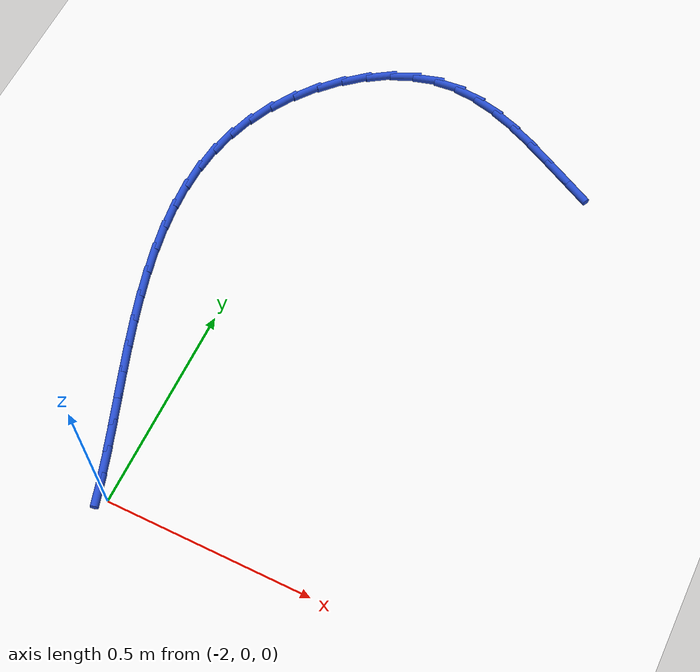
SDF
<sdf version="1.6">
 <world name="default">
  <model name="ground_plane">
   <static>1</static>
   <link name="link">
    <collision name="collision">
     <geometry><plane><normal>0 0 1</normal><size>100 100</size></plane></geometry>
     <surface><friction><ode><mu>100</mu><mu2>50</mu2></ode></friction></surface>
    </collision>
    <visual name="visual">
     <cast_shadows>0</cast_shadows>
     <geometry><plane><normal>0 0 1</normal><size>100 100</size></plane></geometry>
     <material>
      <script><uri>file://media/materials/scripts/gazebo.material</uri><name>Gazebo/WhiteGlow</name></script>
     </material>
    </visual>
   </link>
  </model>
  <model name="line">
   <link name="link_33">
    <pose>-1.3680619945532875 1.1858570843148974 0.01 0 1.57 -0.48167110375959066</pose>
    <collision name="collision">
     <geometry><cylinder><radius>0.01</radius><length>0.08</length></cylinder></geometry>
    </collision>
    <visual name="visual">
     <material>
      <script><name>Gazebo/Blue</name><uri>file://media/materials/scripts/gazebo.material</uri></script>
     </material>
     <geometry><cylinder><radius>0.01</radius><length>0.08</length></cylinder></geometry>
    </visual>
   </link>
   <link name="link_34">
    <pose>-1.4265219002825946 1.216416224162806 0.01 0 1.57 -0.48101776811226676</pose>
    <collision name="collision">
     <geometry><cylinder><radius>0.01</radius><length>0.08</length></cylinder></geometry>
    </collision>
    <visual name="visual">
     <material>
      <script><name>Gazebo/Blue</name><uri>file://media/materials/scripts/gazebo.material</uri></script>
     </material>
     <geometry><cylinder><radius>0.01</radius><length>0.08</length></cylinder></geometry>
    </visual>
   </link>
   <link name="link_35">
    <pose>-1.4845384417464604 1.2466953559377374 0.01 0 1.57 -0.45736196454035827</pose>
    <collision name="collision">
     <geometry><cylinder><radius>0.01</radius><length>0.08</length></cylinder></geometry>
    </collision>
    <visual name="visual">
     <material>
      <script><name>Gazebo/Blue</name><uri>file://media/materials/scripts/gazebo.material</uri></script>
     </material>
     <geometry><cylinder><radius>0.01</radius><length>0.08</length></cylinder></geometry>
    </visual>
   </link>
   <link name="link_36">
    <pose>-1.5421861475668266 1.2750676807455048 0.01 0 1.57 -0.40869612605816397</pose>
    <collision name="collision">
     <geometry><cylinder><radius>0.01</radius><length>0.08</length></cylinder></geometry>
    </collision>
    <visual name="visual">
     <material>
      <script><name>Gazebo/Blue</name><uri>file://media/materials/scripts/gazebo.material</uri></script>
     </material>
     <geometry><cylinder><radius>0.01</radius><length>0.08</length></cylinder></geometry>
    </visual>
   </link>
   <link name="link_37">
    <pose>-1.5995395463656366 1.2999063996919218 0.01 0 1.57 -0.3317006676024272</pose>
    <collision name="collision">
     <geometry><cylinder><radius>0.01</radius><length>0.08</length></cylinder></geometry>
    </collision>
    <visual name="visual">
     <material>
      <script><name>Gazebo/Blue</name><uri>file://media/materials/scripts/gazebo.material</uri></script>
     </material>
     <geometry><cylinder><radius>0.01</radius><length>0.08</length></cylinder></geometry>
    </visual>
   </link>
   <link name="link_38">
    <pose>-1.6566731667648333 1.3195847138828012 0.01 0 1.57 -0.22246201986221373</pose>
    <collision name="collision">
     <geometry><cylinder><radius>0.01</radius><length>0.08</length></cylinder></geometry>
    </collision>
    <visual name="visual">
     <material>
      <script><name>Gazebo/Blue</name><uri>file://media/materials/scripts/gazebo.material</uri></script>
     </material>
     <geometry><cylinder><radius>0.01</radius><length>0.08</length></cylinder></geometry>
    </visual>
   </link>
   <link name="link_39">
    <pose>-1.7136615373863584 1.3324758244239563 0.01 0 1.57 -0.07849776703074753</pose>
    <collision name="collision">
     <geometry><cylinder><radius>0.01</radius><length>0.08</length></cylinder></geometry>
    </collision>
    <visual name="visual">
     <material>
      <script><name>Gazebo/Blue</name><uri>file://media/materials/scripts/gazebo.material</uri></script>
     </material>
     <geometry><cylinder><radius>0.01</radius><length>0.08</length></cylinder></geometry>
    </visual>
   </link>
   <link name="link_40">
    <pose>-1.7705791868521557 1.3369529324212006 0.01 0 1.57 0.0974018023067394</pose>
    <collision name="collision">
     <geometry><cylinder><radius>0.01</radius><length>0.08</length></cylinder></geometry>
    </collision>
    <visual name="visual">
     <material>
      <script><name>Gazebo/Blue</name><uri>file://media/materials/scripts/gazebo.material</uri></script>
     </material>
     <geometry><cylinder><radius>0.01</radius><length>0.08</length></cylinder></geometry>
    </visual>
   </link>
   <link name="link_41">
    <pose>-1.8274999192442494 1.33139115095042 0.01 0 1.57 0.28256150475679875</pose>
    <collision name="collision">
     <geometry><cylinder><radius>0.01</radius><length>0.08</length></cylinder></geometry>
    </collision>
    <visual name="visual">
     <material>
      <script><name>Gazebo/Blue</name><uri>file://media/materials/scripts/gazebo.material</uri></script>
     </material>
     <geometry><cylinder><radius>0.01</radius><length>0.08</length></cylinder></geometry>
    </visual>
   </link>
   <link name="link_42">
    <pose>-1.8842090804911673 1.3149267980165213 0.01 0 1.57 0.44230348806482017</pose>
    <collision name="collision">
     <geometry><cylinder><radius>0.01</radius><length>0.08</length></cylinder></geometry>
    </collision>
    <visual name="visual">
     <material>
      <script><name>Gazebo/Blue</name><uri>file://media/materials/scripts/gazebo.material</uri></script>
     </material>
     <geometry><cylinder><radius>0.01</radius><length>0.08</length></cylinder></geometry>
    </visual>
   </link>
   <link name="link_43">
    <pose>-1.9397645611070429 1.2886158553273495 0.01 0 1.57 0.5780629868582995</pose>
    <collision name="collision">
     <geometry><cylinder><radius>0.01</radius><length>0.08</length></cylinder></geometry>
    </collision>
    <visual name="visual">
     <material>
      <script><name>Gazebo/Blue</name><uri>file://media/materials/scripts/gazebo.material</uri></script>
     </material>
     <geometry><cylinder><radius>0.01</radius><length>0.08</length></cylinder></geometry>
    </visual>
   </link>
   <link name="link_44">
    <pose>-1.9931113568093937 1.2538122198155373 0.01 0 1.57 0.6971667889857509</pose>
    <collision name="collision">
     <geometry><cylinder><radius>0.01</radius><length>0.08</length></cylinder></geometry>
    </collision>
    <visual name="visual">
     <material>
      <script><name>Gazebo/Blue</name><uri>file://media/materials/scripts/gazebo.material</uri></script>
     </material>
     <geometry><cylinder><radius>0.01</radius><length>0.08</length></cylinder></geometry>
    </visual>
   </link>
   <link name="link_45">
    <pose>-2.043194463315742 1.2118697884137202 0.01 0 1.57 0.8063907014326493</pose>
    <collision name="collision">
     <geometry><cylinder><radius>0.01</radius><length>0.08</length></cylinder></geometry>
    </collision>
    <visual name="visual">
     <material>
      <script><name>Gazebo/Blue</name><uri>file://media/materials/scripts/gazebo.material</uri></script>
     </material>
     <geometry><cylinder><radius>0.01</radius><length>0.08</length></cylinder></geometry>
    </visual>
   </link>
   <link name="link_46">
    <pose>-2.088958876343607 1.1641424580545305 0.01 0 1.57 0.911869578535707</pose>
    <collision name="collision">
     <geometry><cylinder><radius>0.01</radius><length>0.08</length></cylinder></geometry>
    </collision>
    <visual name="visual">
     <material>
      <script><name>Gazebo/Blue</name><uri>file://media/materials/scripts/gazebo.material</uri></script>
     </material>
     <geometry><cylinder><radius>0.01</radius><length>0.08</length></cylinder></geometry>
    </visual>
   </link>
   <link name="link_47">
    <pose>-2.1293495916105085 1.1119841256706042 0.01 0 1.57 1.0195225771992038</pose>
    <collision name="collision">
     <geometry><cylinder><radius>0.01</radius><length>0.08</length></cylinder></geometry>
    </collision>
    <visual name="visual">
     <material>
      <script><name>Gazebo/Blue</name><uri>file://media/materials/scripts/gazebo.material</uri></script>
     </material>
     <geometry><cylinder><radius>0.01</radius><length>0.08</length></cylinder></geometry>
    </visual>
   </link>
   <link name="link_48">
    <pose>-2.1633116048339667 1.056748688194575 0.01 0 1.57 1.1342020951963223</pose>
    <collision name="collision">
     <geometry><cylinder><radius>0.01</radius><length>0.08</length></cylinder></geometry>
    </collision>
    <visual name="visual">
     <material>
      <script><name>Gazebo/Blue</name><uri>file://media/materials/scripts/gazebo.material</uri></script>
     </material>
     <geometry><cylinder><radius>0.01</radius><length>0.08</length></cylinder></geometry>
    </visual>
   </link>
   <link name="link_49">
    <pose>-2.1899417060814055 0.9996792817961874 0.01 0 1.57 1.24962530375601</pose>
    <collision name="collision">
     <geometry><cylinder><radius>0.01</radius><length>0.08</length></cylinder></geometry>
    </collision>
    <visual name="visual">
     <material>
      <script><name>Gazebo/Blue</name><uri>file://media/materials/scripts/gazebo.material</uri></script>
     </material>
     <geometry><cylinder><radius>0.01</radius><length>0.08</length></cylinder></geometry>
    </visual>
   </link>
   <link name="link_50">
    <pose>-2.209377272676838 0.9412597506263055 0.01 0 1.57 1.3590219584627934</pose>
    <collision name="collision">
     <geometry><cylinder><radius>0.01</radius><length>0.08</length></cylinder></geometry>
    </collision>
    <visual name="visual">
     <material>
      <script><name>Gazebo/Blue</name><uri>file://media/materials/scripts/gazebo.material</uri></script>
     </material>
     <geometry><cylinder><radius>0.01</radius><length>0.08</length></cylinder></geometry>
    </visual>
   </link>
   <link name="link_51">
    <pose>-2.2221920714615755 0.881655515680492 0.01 0 1.57 1.4595978273086796</pose>
    <collision name="collision">
     <geometry><cylinder><radius>0.01</radius><length>0.08</length></cylinder></geometry>
    </collision>
    <visual name="visual">
     <material>
      <script><name>Gazebo/Blue</name><uri>file://media/materials/scripts/gazebo.material</uri></script>
     </material>
     <geometry><cylinder><radius>0.01</radius><length>0.08</length></cylinder></geometry>
    </visual>
   </link>
   <link name="link_52">
    <pose>-2.2289613606993965 0.821030909698457 0.01 0 1.57 1.5496702519815038</pose>
    <collision name="collision">
     <geometry><cylinder><radius>0.01</radius><length>0.08</length></cylinder></geometry>
    </collision>
    <visual name="visual">
     <material>
      <script><name>Gazebo/Blue</name><uri>file://media/materials/scripts/gazebo.material</uri></script>
     </material>
     <geometry><cylinder><radius>0.01</radius><length>0.08</length></cylinder></geometry>
    </visual>
   </link>
   <link name="link_53">
    <pose>-2.2302603986540768 0.7595502654199087 0.01 0 1.57 -1.5130221994805741</pose>
    <collision name="collision">
     <geometry><cylinder><radius>0.01</radius><length>0.08</length></cylinder></geometry>
    </collision>
    <visual name="visual">
     <material>
      <script><name>Gazebo/Blue</name><uri>file://media/materials/scripts/gazebo.material</uri></script>
     </material>
     <geometry><cylinder><radius>0.01</radius><length>0.08</length></cylinder></geometry>
    </visual>
   </link>
   <link name="link_54">
    <pose>-2.2266644435893954 0.6973779155845562 0.01 0 1.57 -1.445213110364718</pose>
    <collision name="collision">
     <geometry><cylinder><radius>0.01</radius><length>0.08</length></cylinder></geometry>
    </collision>
    <visual name="visual">
     <material>
      <script><name>Gazebo/Blue</name><uri>file://media/materials/scripts/gazebo.material</uri></script>
     </material>
     <geometry><cylinder><radius>0.01</radius><length>0.08</length></cylinder></geometry>
    </visual>
   </link>
   <link name="link_55">
    <pose>-2.2187487537691264 0.6346781929321081 0.01 0 1.57 -1.387963376926877</pose>
    <collision name="collision">
     <geometry><cylinder><radius>0.01</radius><length>0.08</length></cylinder></geometry>
    </collision>
    <visual name="visual">
     <material>
      <script><name>Gazebo/Blue</name><uri>file://media/materials/scripts/gazebo.material</uri></script>
     </material>
     <geometry><cylinder><radius>0.01</radius><length>0.08</length></cylinder></geometry>
    </visual>
   </link>
   <link name="link_56">
    <pose>-2.207088587457049 0.5716154302022747 0.01 0 1.57 -1.3405396163470695</pose>
    <collision name="collision">
     <geometry><cylinder><radius>0.01</radius><length>0.08</length></cylinder></geometry>
    </collision>
    <visual name="visual">
     <material>
      <script><name>Gazebo/Blue</name><uri>file://media/materials/scripts/gazebo.material</uri></script>
     </material>
     <geometry><cylinder><radius>0.01</radius><length>0.08</length></cylinder></geometry>
    </visual>
   </link>
   <link name="link_57">
    <pose>-2.1922592029169383 0.508353960134764 0.01 0 1.57 -1.3021806239883402</pose>
    <collision name="collision">
     <geometry><cylinder><radius>0.01</radius><length>0.08</length></cylinder></geometry>
    </collision>
    <visual name="visual">
     <material>
      <script><name>Gazebo/Blue</name><uri>file://media/materials/scripts/gazebo.material</uri></script>
     </material>
     <geometry><cylinder><radius>0.01</radius><length>0.08</length></cylinder></geometry>
    </visual>
   </link>
   <link name="link_58">
    <pose>-2.174835858412573 0.44505811546928487 0.01 0 1.57 -1.2722050019672206</pose>
    <collision name="collision">
     <geometry><cylinder><radius>0.01</radius><length>0.08</length></cylinder></geometry>
    </collision>
    <visual name="visual">
     <material>
      <script><name>Gazebo/Blue</name><uri>file://media/materials/scripts/gazebo.material</uri></script>
     </material>
     <geometry><cylinder><radius>0.01</radius><length>0.08</length></cylinder></geometry>
    </visual>
   </link>
   <link name="link_59">
    <pose>-2.1553938122077287 0.38189222894554653 0.01 0 1.57 -1.2500726285225607</pose>
    <collision name="collision">
     <geometry><cylinder><radius>0.01</radius><length>0.08</length></cylinder></geometry>
    </collision>
    <visual name="visual">
     <material>
      <script><name>Gazebo/Blue</name><uri>file://media/materials/scripts/gazebo.material</uri></script>
     </material>
     <geometry><cylinder><radius>0.01</radius><length>0.08</length></cylinder></geometry>
    </visual>
   </link>
   <link name="link_60">
    <pose>-2.134508322566183 0.31902063330325875 0.01 0 1.57 -1.2354798249964483</pose>
    <collision name="collision">
     <geometry><cylinder><radius>0.01</radius><length>0.08</length></cylinder></geometry>
    </collision>
    <visual name="visual">
     <material>
      <script><name>Gazebo/Blue</name><uri>file://media/materials/scripts/gazebo.material</uri></script>
     </material>
     <geometry><cylinder><radius>0.01</radius><length>0.08</length></cylinder></geometry>
    </visual>
   </link>
   <link name="link_61">
    <pose>-2.1127523818475185 0.2565889594897993 0.01 0 1.57 -1.228731815216325</pose>
    <collision name="collision">
     <geometry><cylinder><radius>0.01</radius><length>0.08</length></cylinder></geometry>
    </collision>
    <visual name="visual">
     <material>
      <script><name>Gazebo/Blue</name><uri>file://media/materials/scripts/gazebo.material</uri></script>
     </material>
     <geometry><cylinder><radius>0.01</radius><length>0.08</length></cylinder></geometry>
    </visual>
   </link>
   <link name="link_62">
    <pose>-2.0906822803293057 0.1946049866977785 0.01 0 1.57 -1.230093172895289</pose>
    <collision name="collision">
     <geometry><cylinder><radius>0.01</radius><length>0.08</length></cylinder></geometry>
    </collision>
    <visual name="visual">
     <material>
      <script><name>Gazebo/Blue</name><uri>file://media/materials/scripts/gazebo.material</uri></script>
     </material>
     <geometry><cylinder><radius>0.01</radius><length>0.08</length></cylinder></geometry>
    </visual>
   </link>
   <link name="link_63">
    <pose>-2.0688468396919744 0.13301485155207124 0.01 0 1.57 -1.2397418457847635</pose>
    <collision name="collision">
     <geometry><cylinder><radius>0.01</radius><length>0.08</length></cylinder></geometry>
    </collision>
    <visual name="visual">
     <material>
      <script><name>Gazebo/Blue</name><uri>file://media/materials/scripts/gazebo.material</uri></script>
     </material>
     <geometry><cylinder><radius>0.01</radius><length>0.08</length></cylinder></geometry>
    </visual>
   </link>
   <link name="link_64">
    <pose>-2.0477948467564184 0.07176440296207126 0.01 0 1.57 -1.2579572279360078</pose>
    <collision name="collision">
     <geometry><cylinder><radius>0.01</radius><length>0.08</length></cylinder></geometry>
    </collision>
    <visual name="visual">
     <material>
      <script><name>Gazebo/Blue</name><uri>file://media/materials/scripts/gazebo.material</uri></script>
     </material>
     <geometry><cylinder><radius>0.01</radius><length>0.08</length></cylinder></geometry>
    </visual>
   </link>
   <link name="link_65">
    <pose>-2.0280750883435377 0.010799489837171336 0.01 0 1.57 -1.2851096232473782</pose>
    <collision name="collision">
     <geometry><cylinder><radius>0.01</radius><length>0.08</length></cylinder></geometry>
    </collision>
    <visual name="visual">
     <material>
      <script><name>Gazebo/Blue</name><uri>file://media/materials/scripts/gazebo.material</uri></script>
     </material>
     <geometry><cylinder><radius>0.01</radius><length>0.08</length></cylinder></geometry>
    </visual>
   </link>
  </model>
 </world>
</sdf>
